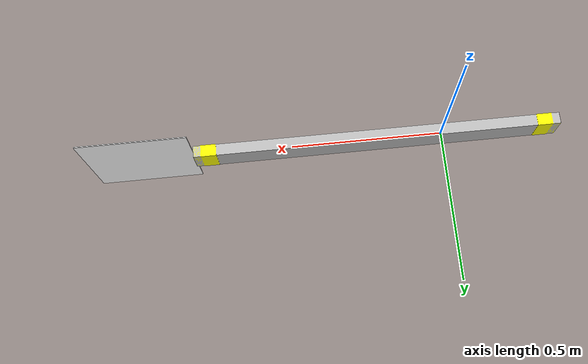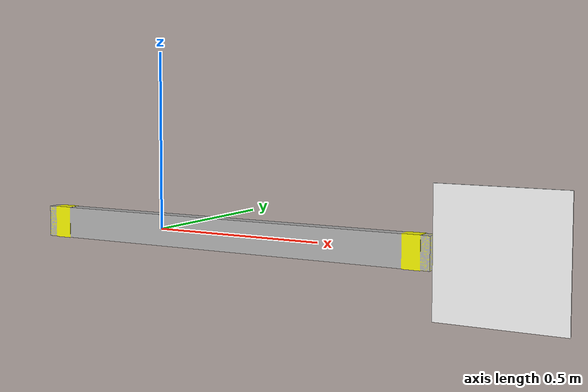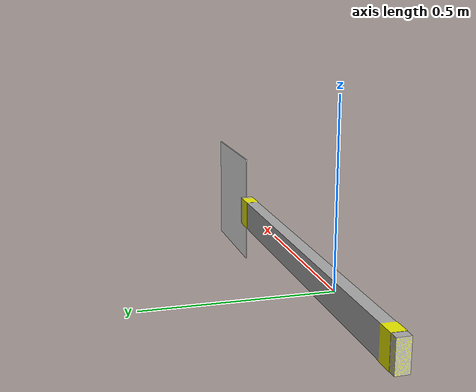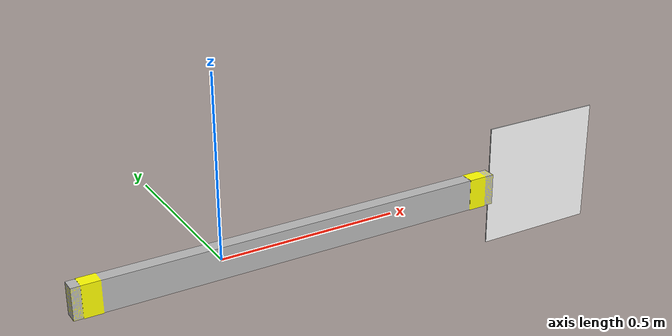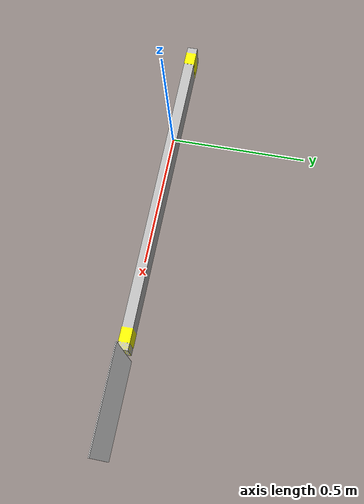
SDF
<?xml version="1.0"?>
<sdf version="1.9">
  <model name="aruco_marker_186_and_187">
    <static>true</static>

    <link name="aruco_186_and_187">
      <visual name="front">
        <pose>1 0.001 0 0 1.5707900000000004 0</pose>
        <geometry>
          <box>
            <size>0.35 0.002 0.35</size>
          </box>
        </geometry>

        <material>
          <ambient>1 1 1 1</ambient>
          <diffuse>1 1 1 1</diffuse>
          <specular>0.1 0.1 0.1 1</specular>
          <emissive>0 0 0 1</emissive>

          <pbr>
            <metal>
              <albedo_map>
                model://aruco/aruco_marker_186_and_187/materials/textures/marker_186.png
              </albedo_map>
              <emissive_map>
                model://aruco/aruco_marker_186_and_187/materials/textures/marker_186.png
              </emissive_map>
            </metal>
          </pbr>
        </material>
      </visual>

      <visual name="back">
        <pose>1 -0.001 0 0 -1.5707900000000004 3.1416</pose>
        <geometry>
          <box>
            <size>0.35 0.002 0.35</size>
          </box>
        </geometry>
        <material>
          <ambient>1 1 1 1</ambient>
          <diffuse>1 1 1 1</diffuse>
          <specular>0.1 0.1 0.1 1</specular>
          <emissive>0 0 0 1</emissive>

          <pbr>
            <metal>
              <albedo_map>
                model://aruco/aruco_marker_186_and_187/materials/textures/marker_187.png
              </albedo_map>
              <emissive_map>
                model://aruco/aruco_marker_186_and_187/materials/textures/marker_187.png
              </emissive_map>
            </metal>
          </pbr>
        </material>
      </visual>

      <collision name="collision">
        <pose>0.21558300000000002 0 0 0 0 0</pose>
        <geometry>
          <box>
            <size>1.2192 0.038 0.0888</size>
          </box>
        </geometry>
        <surface>
          <bounce>
            <restitution_coefficient>0.01</restitution_coefficient>
            <threshold>5.0</threshold>
          </bounce>
          <friction>
            <ode>
              <mu>5</mu>
              <mu2>5</mu2>
            </ode>
          </friction>
          <contact>
            <ode>
              <soft_cfm>0.001</soft_cfm>
              <!--"sponginess", 0.0=hard-->
              <kp>10000.0</kp>
              <kd>1000.0</kd>
              <max_vel>0.01</max_vel>
              <min_depth>0.001</min_depth>
            </ode>
          </contact>
        </surface>
      </collision>
      <visual name="visual_wood">
        <pose>0.21558300000000002 0 0 0 0 0</pose>
        <geometry>
          <mesh>
            <uri>model://drc_practice_2x4/meshes/2x4x48.dae</uri>
          </mesh>
        </geometry>
      </visual>

    </link>

  </model>
</sdf>
